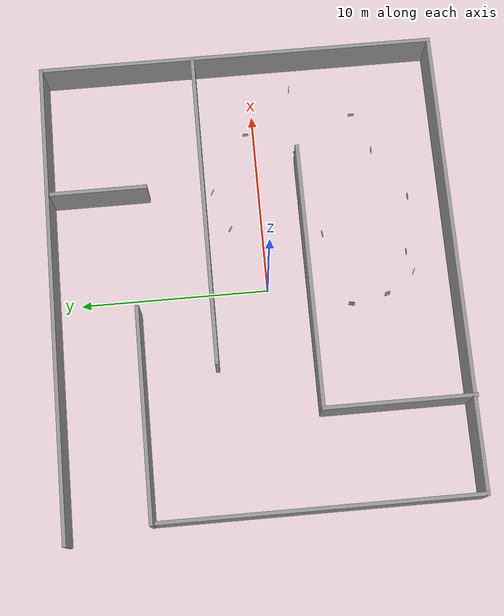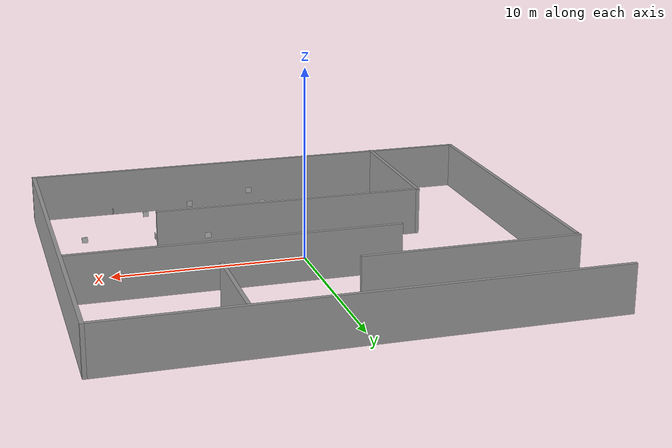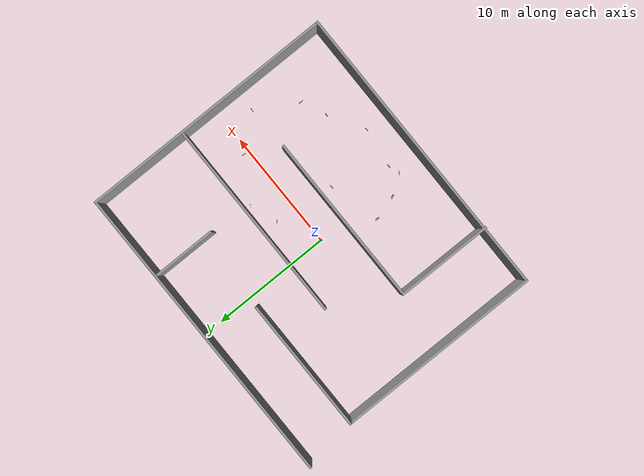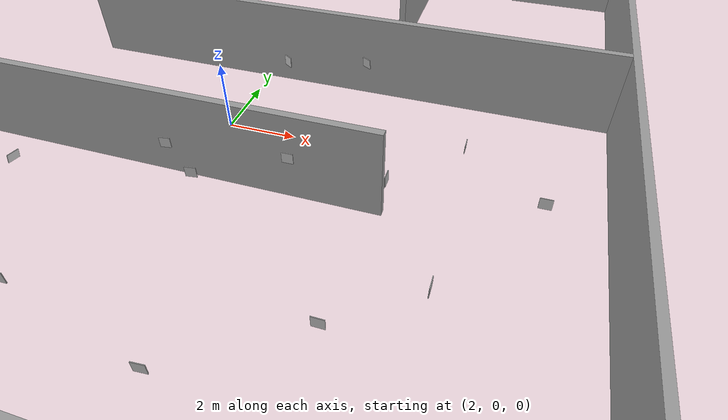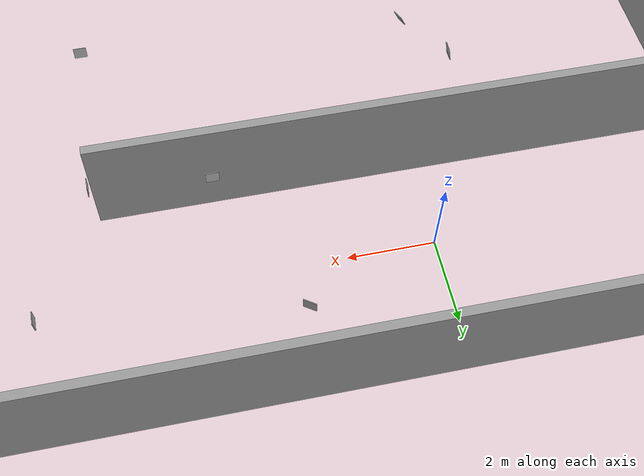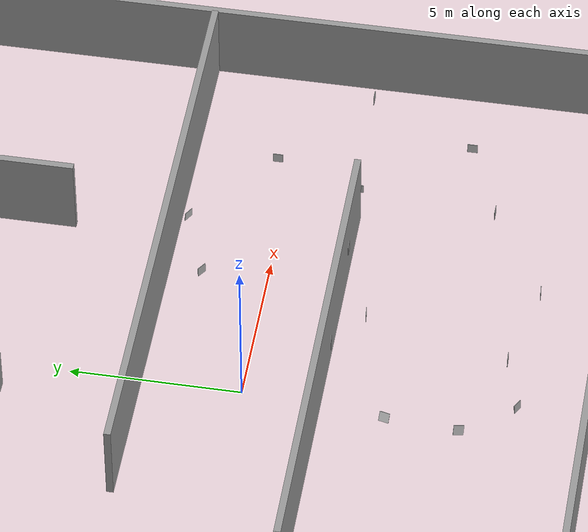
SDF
<sdf version="1.6">
 <world name="default">
  <model name="ground_plane">
   <static>1</static>
   <link name="link">
    <collision name="collision">
     <geometry><plane><normal>0 0 1</normal><size>100 100</size></plane></geometry>
     <surface><friction><ode><mu>100</mu><mu2>50</mu2></ode></friction></surface>
    </collision>
   </link>
  </model>
  <light name="sun" type="directional">
   <pose>0 0 10 0 -0 0</pose>
   <diffuse>0.8 0.8 0.8 1</diffuse>
   <specular>0.1 0.1 0.1 1</specular>
   <attenuation>
    <range>1000</range>
    <constant>0.9</constant>
    <linear>0.01</linear>
    <quadratic>0.001</quadratic>
   </attenuation>
   <direction>-0.5 0.5 -1</direction>
  </light>
  <model name="simpleWorld">
   <pose>-0.0067 0.02842 0 0 -0 0</pose>
   <link name="Wall_1">
    <collision name="Wall_1_Collision">
     <geometry><box><size>16.7182 0.2 2.5</size></box></geometry>
     <pose>0 0 1.25 0 -0 0</pose>
    </collision>
    <visual name="Wall_1_Visual">
     <pose>0 0 1.25 0 -0 0</pose>
     <geometry><box><size>16.7182 0.2 2.5</size></box></geometry>
     <material>
      <script><uri>file://media/materials/scripts/gazebo.material</uri><name>Gazebo/Grey</name></script>
     </material>
    </visual>
    <velocity_decay><linear>0</linear><angular>0</angular></velocity_decay>
    <pose>-11.8636 -1.67251 0 0 0 -1.5708</pose>
   </link>
   <link name="Wall_10">
    <collision name="Wall_10_Collision">
     <geometry><box><size>5.17829 0.2 2.5</size></box></geometry>
     <pose>0 0 1.25 0 -0 0</pose>
    </collision>
    <visual name="Wall_10_Visual">
     <pose>0 0 1.25 0 -0 0</pose>
     <geometry><box><size>5.17829 0.2 2.5</size></box></geometry>
     <material>
      <script><uri>file://media/materials/scripts/gazebo.material</uri><name>Gazebo/Grey</name></script>
     </material>
    </visual>
    <velocity_decay><linear>0</linear><angular>0</angular></velocity_decay>
    <pose>5.66371 8.49534 0 0 0 -1.5708</pose>
   </link>
   <link name="Wall_12">
    <collision name="Wall_12_Collision">
     <geometry><box><size>7.99211 0.2 2.5</size></box></geometry>
     <pose>0 0 1.25 0 -0 0</pose>
    </collision>
    <visual name="Wall_12_Visual">
     <pose>0 0 1.25 0 -0 0</pose>
     <geometry><box><size>7.99211 0.2 2.5</size></box></geometry>
     <material>
      <script><uri>file://media/materials/scripts/gazebo.material</uri><name>Gazebo/Grey</name></script>
     </material>
    </visual>
    <velocity_decay><linear>0</linear><angular>0</angular></velocity_decay>
    <pose>-6.89025 -6.11486 0 0 -0 1.5708</pose>
   </link>
   <link name="Wall_13">
    <collision name="Wall_13_Collision">
     <geometry><box><size>14.2691 0.2 2.5</size></box></geometry>
     <pose>0 0 1.25 0 -0 0</pose>
    </collision>
    <visual name="Wall_13_Visual">
     <pose>0 0 1.25 0 -0 0</pose>
     <geometry><box><size>14.2691 0.2 2.5</size></box></geometry>
     <material>
      <script><uri>file://media/materials/scripts/gazebo.material</uri><name>Gazebo/Grey</name></script>
     </material>
    </visual>
    <velocity_decay><linear>0</linear><angular>0</angular></velocity_decay>
    <pose>0.144297 -2.21881 0 0 -0 0</pose>
   </link>
   <link name="Wall_2">
    <collision name="Wall_2_Collision">
     <geometry><box><size>24.7985 0.2 2.5</size></box></geometry>
     <pose>0 0 1.25 0 -0 0</pose>
    </collision>
    <visual name="Wall_2_Visual">
     <pose>0 0 1.25 0 -0 0</pose>
     <geometry><box><size>24.7985 0.2 2.5</size></box></geometry>
     <material>
      <script><uri>file://media/materials/scripts/gazebo.material</uri><name>Gazebo/Grey</name></script>
     </material>
    </visual>
    <velocity_decay><linear>0</linear><angular>0</angular></velocity_decay>
    <pose>0.435691 -9.93163 0 0 -0 0</pose>
   </link>
   <link name="Wall_3">
    <collision name="Wall_3_Collision">
     <geometry><box><size>21.3326 0.2 2.5</size></box></geometry>
     <pose>0 0 1.25 0 -0 0</pose>
    </collision>
    <visual name="Wall_3_Visual">
     <pose>0 0 1.25 0 -0 0</pose>
     <geometry><box><size>21.3326 0.2 2.5</size></box></geometry>
     <material>
      <script><uri>file://media/materials/scripts/gazebo.material</uri><name>Gazebo/Grey</name></script>
     </material>
    </visual>
    <velocity_decay><linear>0</linear><angular>0</angular></velocity_decay>
    <pose>12.7349 0.634654 0 0 -0 1.5708</pose>
   </link>
   <link name="Wall_4">
    <collision name="Wall_4_Collision">
     <geometry><box><size>25.4528 0.2 2.5</size></box></geometry>
     <pose>0 0 1.25 0 -0 0</pose>
    </collision>
    <visual name="Wall_4_Visual">
     <pose>0 0 1.25 0 -0 0</pose>
     <geometry><box><size>25.4528 0.2 2.5</size></box></geometry>
     <material>
      <script><uri>file://media/materials/scripts/gazebo.material</uri><name>Gazebo/Grey</name></script>
     </material>
    </visual>
    <velocity_decay><linear>0</linear><angular>0</angular></velocity_decay>
    <pose>0.108526 11.2009 0 0 -0 3.14159</pose>
   </link>
   <link name="Wall_6">
    <collision name="Wall_6_Collision">
     <geometry><box><size>11.2388 0.2 2.5</size></box></geometry>
     <pose>0 0 1.25 0 -0 0</pose>
    </collision>
    <visual name="Wall_6_Visual">
     <pose>0 0 1.25 0 -0 0</pose>
     <geometry><box><size>11.2388 0.2 2.5</size></box></geometry>
     <material>
      <script><uri>file://media/materials/scripts/gazebo.material</uri><name>Gazebo/Grey</name></script>
     </material>
    </visual>
    <velocity_decay><linear>0</linear><angular>0</angular></velocity_decay>
    <pose>-6.34913 6.87198 0 0 -0 0</pose>
   </link>
   <link name="Wall_8">
    <collision name="Wall_8_Collision">
     <geometry><box><size>16.8665 0.2 2.5</size></box></geometry>
     <pose>0 0 1.25 0 -0 0</pose>
    </collision>
    <visual name="Wall_8_Visual">
     <pose>0 0 1.25 0 -0 0</pose>
     <geometry><box><size>16.8665 0.2 2.5</size></box></geometry>
     <material>
      <script><uri>file://media/materials/scripts/gazebo.material</uri><name>Gazebo/Grey</name></script>
     </material>
    </visual>
    <velocity_decay><linear>0</linear><angular>0</angular></velocity_decay>
    <pose>4.2568 2.97593 0 0 -0 3.14159</pose>
   </link>
   <static>1</static>
  </model>
  <model name="tag_0">
   <pose>5.42768 2.51666 1.28092 -3.14159 -1.49351 -2.09854</pose>
   <static>1</static>
   <link name="fronttag">
    <pose>0 0 0.01 0 -0 0</pose>
    <collision name="collision"><geometry><box><size>0.3 0.3 0.01</size></box></geometry></collision>
    <visual name="visual">
     <geometry><box><size>0.3 0.3 0.01</size></box></geometry>
     <material>
      <script><uri>file://tags_material/scripts/tags.material</uri><name>Tag36_11_00000</name></script>
     </material>
    </visual>
   </link>
   <link name="backcover">
    <collision name="collision"><geometry><box><size>0.3 0.3 0.01</size></box></geometry></collision>
    <visual name="visual"><geometry><box><size>0.3 0.3 0.01</size></box></geometry></visual>
   </link>
   <static>0</static>
  </model>
  <model name="tag_1">
   <pose>3.233 1.72474 1.40712 1.52955 -0.001384 -0.598396</pose>
   <static>1</static>
   <link name="fronttag">
    <pose>0 0 0.01 0 -0 0</pose>
    <collision name="collision"><geometry><box><size>0.3 0.3 0.01</size></box></geometry></collision>
    <visual name="visual">
     <geometry><box><size>0.3 0.3 0.01</size></box></geometry>
     <material>
      <script><uri>file://tags_material/scripts/tags.material</uri><name>Tag36_11_00001</name></script>
     </material>
    </visual>
   </link>
   <link name="backcover">
    <collision name="collision"><geometry><box><size>0.3 0.3 0.01</size></box></geometry></collision>
    <visual name="visual"><geometry><box><size>0.3 0.3 0.01</size></box></geometry></visual>
   </link>
   <static>0</static>
  </model>
  <model name="tag_2">
   <pose>5.82222 2.93136 1.23782 1.57188 -0 0</pose>
   <static>1</static>
   <link name="fronttag">
    <pose>0 0 0.01 0 -0 0</pose>
    <collision name="collision"><geometry><box><size>0.3 0.3 0.01</size></box></geometry></collision>
    <visual name="visual">
     <geometry><box><size>0.3 0.3 0.01</size></box></geometry>
     <material>
      <script><uri>file://tags_material/scripts/tags.material</uri><name>Tag36_11_00002</name></script>
     </material>
    </visual>
   </link>
   <link name="backcover">
    <collision name="collision"><geometry><box><size>0.3 0.3 0.01</size></box></geometry></collision>
    <visual name="visual"><geometry><box><size>0.3 0.3 0.01</size></box></geometry></visual>
   </link>
   <static>0</static>
  </model>
  <model name="tag_3">
   <pose>8.85979 0.451895 0.473964 0 -1.53132 0</pose>
   <static>1</static>
   <link name="fronttag">
    <pose>0 0 0.01 0 -0 0</pose>
    <collision name="collision"><geometry><box><size>0.3 0.3 0.01</size></box></geometry></collision>
    <visual name="visual">
     <geometry><box><size>0.3 0.3 0.01</size></box></geometry>
     <material>
      <script><uri>file://tags_material/scripts/tags.material</uri><name>Tag36_11_00003</name></script>
     </material>
    </visual>
   </link>
   <link name="backcover">
    <collision name="collision"><geometry><box><size>0.3 0.3 0.01</size></box></geometry></collision>
    <visual name="visual"><geometry><box><size>0.3 0.3 0.01</size></box></geometry></visual>
   </link>
   <static>0</static>
  </model>
  <model name="tag_4">
   <pose>1.46185 -2.33649 0.974989 -1.57684 0.000864 -2.99971</pose>
   <static>1</static>
   <link name="fronttag">
    <pose>0 0 0.01 0 -0 0</pose>
    <collision name="collision"><geometry><box><size>0.3 0.3 0.01</size></box></geometry></collision>
    <visual name="visual">
     <geometry><box><size>0.3 0.3 0.01</size></box></geometry>
     <material>
      <script><uri>file://tags_material/scripts/tags.material</uri><name>Tag36_11_00004</name></script>
     </material>
    </visual>
   </link>
   <link name="backcover">
    <collision name="collision"><geometry><box><size>0.3 0.3 0.01</size></box></geometry></collision>
    <visual name="visual"><geometry><box><size>0.3 0.3 0.01</size></box></geometry></visual>
   </link>
   <static>0</static>
  </model>
  <model name="tag_5">
   <pose>9.05535 -5.33855 1.65775 0 -1.53884 0</pose>
   <static>1</static>
   <link name="fronttag">
    <pose>0 0 0.01 0 -0 0</pose>
    <collision name="collision"><geometry><box><size>0.3 0.3 0.01</size></box></geometry></collision>
    <visual name="visual">
     <geometry><box><size>0.3 0.3 0.01</size></box></geometry>
     <material>
      <script><uri>file://tags_material/scripts/tags.material</uri><name>Tag36_11_00005</name></script>
     </material>
    </visual>
   </link>
   <link name="backcover">
    <collision name="collision"><geometry><box><size>0.3 0.3 0.01</size></box></geometry></collision>
    <visual name="visual"><geometry><box><size>0.3 0.3 0.01</size></box></geometry></visual>
   </link>
   <static>0</static>
  </model>
  <model name="tag_6">
   <pose>1.1659 -7.45372 1.52035 -1.52458 -1.56567 -2e-06</pose>
   <static>1</static>
   <link name="fronttag">
    <pose>0 0 0.01 0 -0 0</pose>
    <collision name="collision"><geometry><box><size>0.3 0.3 0.01</size></box></geometry></collision>
    <visual name="visual">
     <geometry><box><size>0.3 0.3 0.01</size></box></geometry>
     <material>
      <script><uri>file://tags_material/scripts/tags.material</uri><name>Tag36_11_00006</name></script>
     </material>
    </visual>
   </link>
   <link name="backcover">
    <collision name="collision"><geometry><box><size>0.3 0.3 0.01</size></box></geometry></collision>
    <visual name="visual"><geometry><box><size>0.3 0.3 0.01</size></box></geometry></visual>
   </link>
   <static>0</static>
  </model>
  <model name="tag_7">
   <pose>10.9577 -2.12913 1.33129 -1.57022 1.55949 -5e-06</pose>
   <static>1</static>
   <link name="fronttag">
    <pose>0 0 0.01 0 -0 0</pose>
    <collision name="collision"><geometry><box><size>0.3 0.3 0.01</size></box></geometry></collision>
    <visual name="visual">
     <geometry><box><size>0.3 0.3 0.01</size></box></geometry>
     <material>
      <script><uri>file://tags_material/scripts/tags.material</uri><name>Tag36_11_00007</name></script>
     </material>
    </visual>
   </link>
   <link name="backcover">
    <collision name="collision"><geometry><box><size>0.3 0.3 0.01</size></box></geometry></collision>
    <visual name="visual"><geometry><box><size>0.3 0.3 0.01</size></box></geometry></visual>
   </link>
   <static>0</static>
  </model>
  <model name="tag_8">
   <pose>-0.806777 -6.34549 0.525099 -2.02338 0.168059 -1.28166</pose>
   <static>1</static>
   <link name="fronttag">
    <pose>0 0 0.01 0 -0 0</pose>
    <collision name="collision"><geometry><box><size>0.3 0.3 0.01</size></box></geometry></collision>
    <visual name="visual">
     <geometry><box><size>0.3 0.3 0.01</size></box></geometry>
     <material>
      <script><uri>file://tags_material/scripts/tags.material</uri><name>Tag36_11_00008</name></script>
     </material>
    </visual>
   </link>
   <link name="backcover">
    <collision name="collision"><geometry><box><size>0.3 0.3 0.01</size></box></geometry></collision>
    <visual name="visual"><geometry><box><size>0.3 0.3 0.01</size></box></geometry></visual>
   </link>
   <static>0</static>
  </model>
  <model name="tag_9">
   <pose>2.68171 -3.15997 0.966582 -1.58489 0.001761 -3.01734</pose>
   <static>1</static>
   <link name="fronttag">
    <pose>0 0 0.01 0 -0 0</pose>
    <collision name="collision"><geometry><box><size>0.3 0.3 0.01</size></box></geometry></collision>
    <visual name="visual">
     <geometry><box><size>0.3 0.3 0.01</size></box></geometry>
     <material>
      <script><uri>file://tags_material/scripts/tags.material</uri><name>Tag36_11_00009</name></script>
     </material>
    </visual>
   </link>
   <link name="backcover">
    <collision name="collision"><geometry><box><size>0.3 0.3 0.01</size></box></geometry></collision>
    <visual name="visual"><geometry><box><size>0.3 0.3 0.01</size></box></geometry></visual>
   </link>
   <static>0</static>
  </model>
  <model name="tag_10">
   <pose>0.273766 -7.87146 0.571133 -2.90251 -1.49309 0.851403</pose>
   <static>1</static>
   <link name="fronttag">
    <pose>0 0 0.01 0 -0 0</pose>
    <collision name="collision"><geometry><box><size>0.3 0.3 0.01</size></box></geometry></collision>
    <visual name="visual">
     <geometry><box><size>0.3 0.3 0.01</size></box></geometry>
     <material>
      <script><uri>file://tags_material/scripts/tags.material</uri><name>Tag36_11_00010</name></script>
     </material>
    </visual>
   </link>
   <link name="backcover">
    <collision name="collision"><geometry><box><size>0.3 0.3 0.01</size></box></geometry></collision>
    <visual name="visual"><geometry><box><size>0.3 0.3 0.01</size></box></geometry></visual>
   </link>
   <static>0</static>
  </model>
  <model name="tag_11">
   <pose>4.41993 -7.99631 0.843475 -1.48648 -1.55113 1e-06</pose>
   <static>1</static>
   <link name="fronttag">
    <pose>0 0 0.01 0 -0 0</pose>
    <collision name="collision"><geometry><box><size>0.3 0.3 0.01</size></box></geometry></collision>
    <visual name="visual">
     <geometry><box><size>0.3 0.3 0.01</size></box></geometry>
     <material>
      <script><uri>file://tags_material/scripts/tags.material</uri><name>Tag36_11_00011</name></script>
     </material>
    </visual>
   </link>
   <link name="backcover">
    <collision name="collision"><geometry><box><size>0.3 0.3 0.01</size></box></geometry></collision>
    <visual name="visual"><geometry><box><size>0.3 0.3 0.01</size></box></geometry></visual>
   </link>
   <static>0</static>
  </model>
  <model name="tag_12">
   <pose>7.17046 -6.29244 1.0325 -1.56693 0 0</pose>
   <static>1</static>
   <link name="fronttag">
    <pose>0 0 0.01 0 -0 0</pose>
    <collision name="collision"><geometry><box><size>0.3 0.3 0.01</size></box></geometry></collision>
    <visual name="visual">
     <geometry><box><size>0.3 0.3 0.01</size></box></geometry>
     <material>
      <script><uri>file://tags_material/scripts/tags.material</uri><name>Tag36_11_00012</name></script>
     </material>
    </visual>
   </link>
   <link name="backcover">
    <collision name="collision"><geometry><box><size>0.3 0.3 0.01</size></box></geometry></collision>
    <visual name="visual"><geometry><box><size>0.3 0.3 0.01</size></box></geometry></visual>
   </link>
   <static>0</static>
  </model>
  <model name="tag_13">
   <pose>4.88751 -2.30304 1.27199 1.59967 -1.56858 1.5e-05</pose>
   <static>1</static>
   <link name="fronttag">
    <pose>0 0 0.01 0 -0 0</pose>
    <collision name="collision"><geometry><box><size>0.3 0.3 0.01</size></box></geometry></collision>
    <visual name="visual">
     <geometry><box><size>0.3 0.3 0.01</size></box></geometry>
     <material>
      <script><uri>file://tags_material/scripts/tags.material</uri><name>Tag36_11_00013</name></script>
     </material>
    </visual>
   </link>
   <link name="backcover">
    <collision name="collision"><geometry><box><size>0.3 0.3 0.01</size></box></geometry></collision>
    <visual name="visual"><geometry><box><size>0.3 0.3 0.01</size></box></geometry></visual>
   </link>
   <static>0</static>
  </model>
  <model name="tag_14">
   <pose>7.34958 -2.207 1.17607 0 1.54163 0</pose>
   <static>1</static>
   <link name="fronttag">
    <pose>0 0 0.01 0 -0 0</pose>
    <collision name="collision"><geometry><box><size>0.3 0.3 0.01</size></box></geometry></collision>
    <visual name="visual">
     <geometry><box><size>0.3 0.3 0.01</size></box></geometry>
     <material>
      <script><uri>file://tags_material/scripts/tags.material</uri><name>Tag36_11_00014</name></script>
     </material>
    </visual>
   </link>
   <link name="backcover">
    <collision name="collision"><geometry><box><size>0.3 0.3 0.01</size></box></geometry></collision>
    <visual name="visual"><geometry><box><size>0.3 0.3 0.01</size></box></geometry></visual>
   </link>
   <static>0</static>
  </model>
  <model name="tag_15">
   <pose>4.63371 -2.05387 1.02013 1.57986 5.8e-05 3.13518</pose>
   <static>1</static>
   <link name="fronttag">
    <pose>0 0 0.01 0 -0 0</pose>
    <collision name="collision"><geometry><box><size>0.3 0.3 0.01</size></box></geometry></collision>
    <visual name="visual">
     <geometry><box><size>0.3 0.3 0.01</size></box></geometry>
     <material>
      <script><uri>file://tags_material/scripts/tags.material</uri><name>Tag36_11_00015</name></script>
     </material>
    </visual>
   </link>
   <link name="backcover">
    <collision name="collision"><geometry><box><size>0.3 0.3 0.01</size></box></geometry></collision>
    <visual name="visual"><geometry><box><size>0.3 0.3 0.01</size></box></geometry></visual>
   </link>
   <static>0</static>
  </model>
  <model name="tag_16">
   <pose>-6.83691 -4.53136 0.739113 0 1.57048 0</pose>
   <static>1</static>
   <link name="fronttag">
    <pose>0 0 0.01 0 -0 0</pose>
    <collision name="collision"><geometry><box><size>0.3 0.3 0.01</size></box></geometry></collision>
    <visual name="visual">
     <geometry><box><size>0.3 0.3 0.01</size></box></geometry>
     <material>
      <script><uri>file://tags_material/scripts/tags.material</uri><name>Tag36_11_00000</name></script>
     </material>
    </visual>
   </link>
   <link name="backcover">
    <collision name="collision"><geometry><box><size>0.3 0.3 0.01</size></box></geometry></collision>
    <visual name="visual"><geometry><box><size>0.3 0.3 0.01</size></box></geometry></visual>
   </link>
   <static>0</static>
  </model>
  <model name="tag_17">
   <pose>-1.37962 -4.30217 1.36858 1.95555 -0.002595 1.34298</pose>
   <static>1</static>
   <link name="fronttag">
    <pose>0 0 0.01 0 -0 0</pose>
    <collision name="collision"><geometry><box><size>0.3 0.3 0.01</size></box></geometry></collision>
    <visual name="visual">
     <geometry><box><size>0.3 0.3 0.01</size></box></geometry>
     <material>
      <script><uri>file://tags_material/scripts/tags.material</uri><name>Tag36_11_00017</name></script>
     </material>
    </visual>
   </link>
   <link name="backcover">
    <collision name="collision"><geometry><box><size>0.3 0.3 0.01</size></box></geometry></collision>
    <visual name="visual"><geometry><box><size>0.3 0.3 0.01</size></box></geometry></visual>
   </link>
   <static>0</static>
  </model>
  <gravity>0 0 -9.8</gravity>
  <magnetic_field>6e-06 2.3e-05 -4.2e-05</magnetic_field>
  <atmosphere type="adiabatic"/>
  <physics name="default_physics" default="0" type="ode">
   <max_step_size>0.001</max_step_size>
   <real_time_factor>1</real_time_factor>
   <real_time_update_rate>1000</real_time_update_rate>
  </physics>
  <scene><ambient>0.4 0.4 0.4 1</ambient><background>0.7 0.7 0.7 1</background><shadows>1</shadows></scene>
  <spherical_coordinates>
   <surface_model>EARTH_WGS84</surface_model>
   <latitude_deg>0</latitude_deg>
   <longitude_deg>0</longitude_deg>
   <elevation>0</elevation>
   <heading_deg>0</heading_deg>
  </spherical_coordinates>
  <light name="user_spot_light_0" type="spot">
   <pose>4.04522 1.14146 1 0 -0 0</pose>
   <diffuse>0.5 0.5 0.5 1</diffuse>
   <specular>0.1 0.1 0.1 1</specular>
   <direction>0 0 -1</direction>
   <attenuation>
    <range>20</range>
    <constant>0.5</constant>
    <linear>0.01</linear>
    <quadratic>0.001</quadratic>
   </attenuation>
   <cast_shadows>0</cast_shadows>
   <spot><inner_angle>0.6</inner_angle><outer_angle>1</outer_angle><falloff>1</falloff></spot>
  </light>
  <light name="user_spot_light_1" type="spot">
   <pose>10.6131 0.487861 1 0 -0 0</pose>
   <diffuse>0.5 0.5 0.5 1</diffuse>
   <specular>0.1 0.1 0.1 1</specular>
   <direction>0 0 -1</direction>
   <attenuation>
    <range>20</range>
    <constant>0.5</constant>
    <linear>0.01</linear>
    <quadratic>0.001</quadratic>
   </attenuation>
   <cast_shadows>0</cast_shadows>
   <spot><inner_angle>0.6</inner_angle><outer_angle>1</outer_angle><falloff>1</falloff></spot>
  </light>
  <light name="user_spot_light_2" type="spot">
   <pose>8.30291 -4.30587 1 0 -0 0</pose>
   <diffuse>0.5 0.5 0.5 1</diffuse>
   <specular>0.1 0.1 0.1 1</specular>
   <direction>0 0 -1</direction>
   <attenuation>
    <range>20</range>
    <constant>0.5</constant>
    <linear>0.01</linear>
    <quadratic>0.001</quadratic>
   </attenuation>
   <cast_shadows>0</cast_shadows>
   <spot><inner_angle>0.6</inner_angle><outer_angle>1</outer_angle><falloff>1</falloff></spot>
  </light>
  <light name="user_directional_light_0" type="directional">
   <pose>4.48655 -2.88891 1 0 -0 0</pose>
   <diffuse>0.5 0.5 0.5 1</diffuse>
   <specular>0.1 0.1 0.1 1</specular>
   <direction>0.1 0.1 -0.9</direction>
   <attenuation>
    <range>20</range>
    <constant>0.5</constant>
    <linear>0.01</linear>
    <quadratic>0.001</quadratic>
   </attenuation>
  </light>
  <light name="user_directional_light_1" type="directional">
   <pose>-1.39776 -3.36542 1 0 -0 0</pose>
   <diffuse>0.5 0.5 0.5 1</diffuse>
   <specular>0.1 0.1 0.1 1</specular>
   <direction>0.1 0.1 -0.9</direction>
   <attenuation>
    <range>20</range>
    <constant>0.5</constant>
    <linear>0.01</linear>
    <quadratic>0.001</quadratic>
   </attenuation>
  </light>
  <light name="user_directional_light_2" type="directional">
   <pose>2.86637 2.32629 1 0 -0 0</pose>
   <diffuse>0.5 0.5 0.5 1</diffuse>
   <specular>0.1 0.1 0.1 1</specular>
   <direction>0.1 0.1 -0.9</direction>
   <attenuation>
    <range>20</range>
    <constant>0.5</constant>
    <linear>0.01</linear>
    <quadratic>0.001</quadratic>
   </attenuation>
  </light>
  <light name="user_directional_light_3" type="directional">
   <pose>2.80467 -7.1882 1 0 -0 0</pose>
   <diffuse>0.5 0.5 0.5 1</diffuse>
   <specular>0.1 0.1 0.1 1</specular>
   <direction>0.1 0.1 -0.9</direction>
   <attenuation>
    <range>20</range>
    <constant>0.5</constant>
    <linear>0.01</linear>
    <quadratic>0.001</quadratic>
   </attenuation>
  </light>
 </world>
</sdf>
